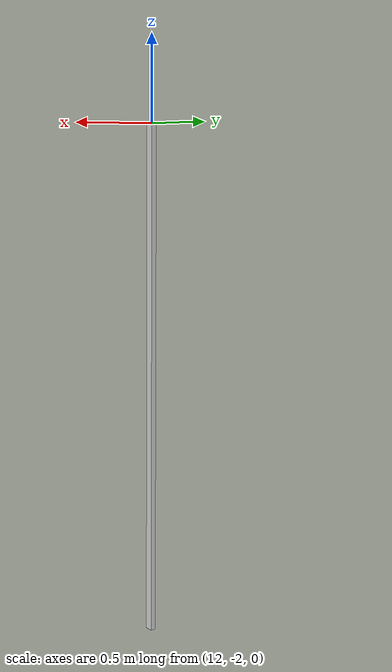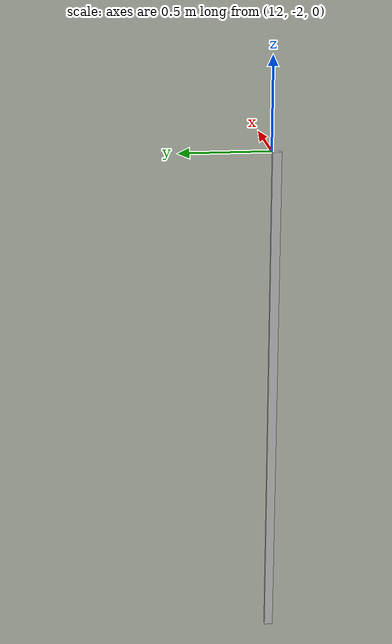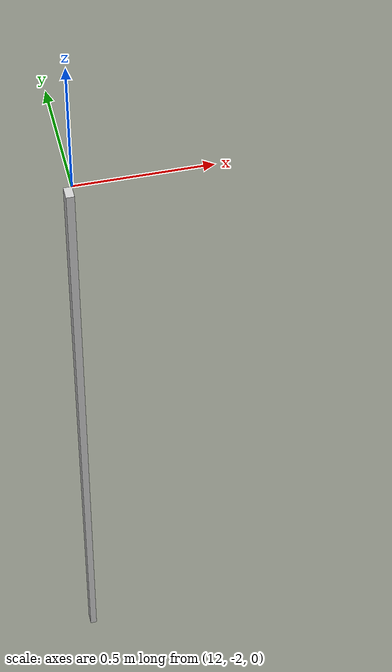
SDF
<?xml version='1.0'?>
<sdf version='1.6'>
  <model name='bump_3cm'>
  <pose>12 -2 0  1.5708 0 -1.5708</pose>
  <static>true</static>
  <link name="body">
  <collision name="collision">
    <geometry>
      <mesh><uri>model://bump_3cm/bump_3cm.dae</uri></mesh>
    </geometry>
    <surface>
      <friction>
        <ode>
          <mu>100</mu>
          <mu2>50</mu2>
        </ode>
      </friction>
    </surface>
  </collision>
    <visual name="visual">
      <geometry>
        <mesh><uri>model://bump_3cm/bump_3cm.dae</uri></mesh>
      </geometry>
    </visual>
  </link>
  </model>
</sdf>
